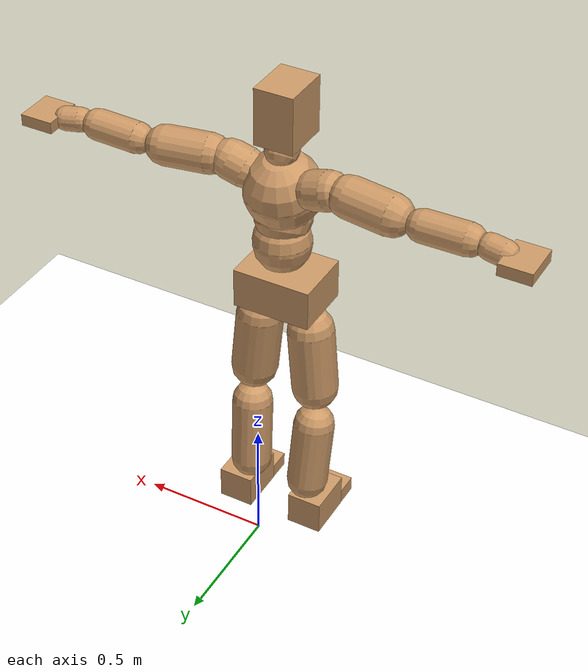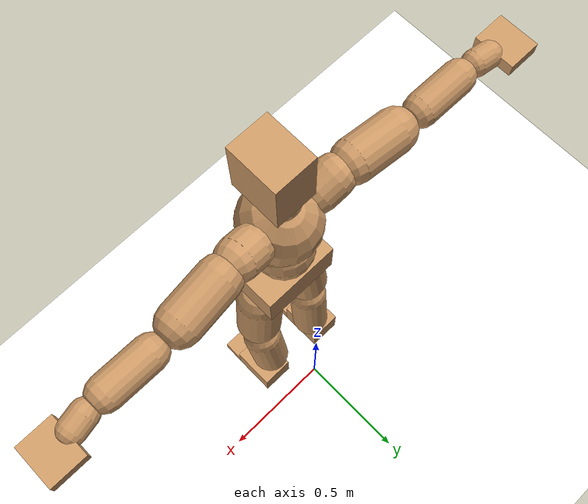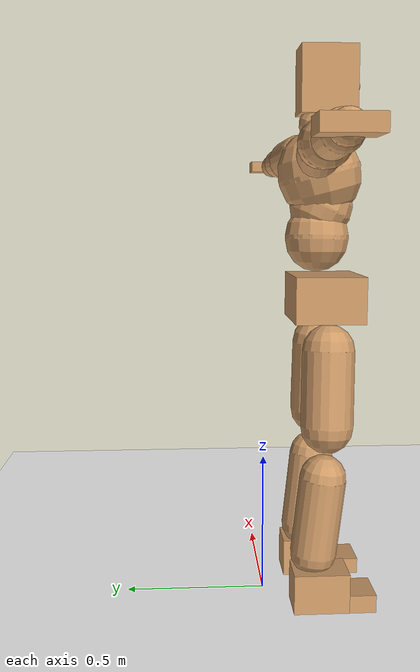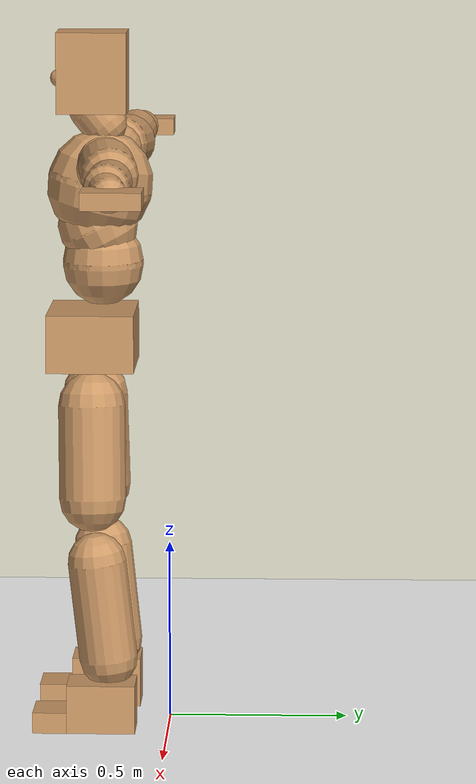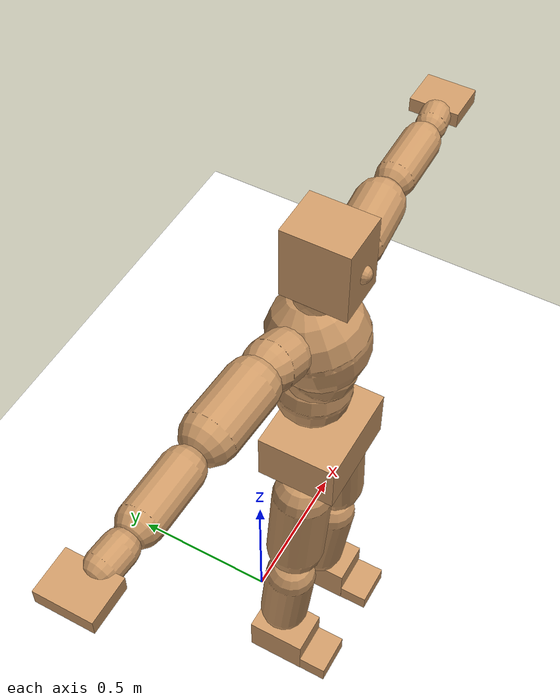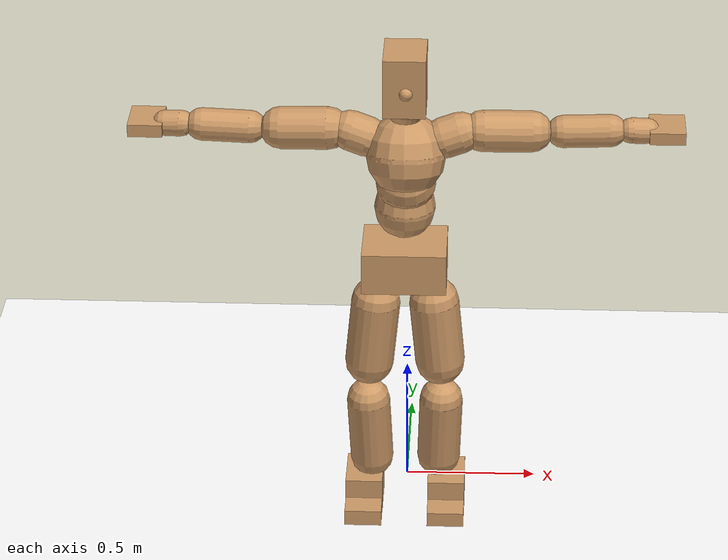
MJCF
<mujoco model="humanoid">
  <option integrator="implicitfast" />

  <visual>
    <global offwidth="1280" offheight="960" />
    <headlight active="1" ambient="0.34 0.34 0.34" diffuse="0.5 0.5 0.5" />
  </visual>

  <default>
    <joint damping="2" stiffness="2" armature="0.01" limited="true" solimplimit="0 .99 .01" />
    <geom condim="1" friction="0.7 0.005 0.0001" solimp=".99 .99 .003" solref="0.015 1" margin="0.001" rgba="0.8 0.6 .4 1" />
    <default class="smplcontact">
      <geom condim="3" friction="1. 0.005 0.0001" solref="0.015 1" solimp="0.98 0.98 0.001" priority="1" />
    </default>
    <default class="stiff_medium">
      <joint stiffness="10" />
    </default>
    <default class="stiff_medium_higher">
      <joint stiffness="50" />
    </default>
    <default class="stiff_high">
      <joint stiffness="100" />
    </default>
  </default>

  <asset>
    <texture type="skybox" builtin="gradient" rgb1="0.99 0.99 0.99" rgb2="0.608 0.828 0.892" width="100" />
    <texture builtin="flat" height="1278" mark="cross" markrgb="1 1 1" name="texgeom" random="0.01" rgb1="0.8 0.6 0.4" rgb2="0.8 0.6 0.4" type="cube" width="127" />
    <texture name="texplane" type="2d" builtin="checker" markrgb="1 1 1" rgb1="0.756 0.772 0.76" rgb2="0.6 0.6 0.6" width="100" height="100" />
    <material name="MatPlane" reflectance="0.5" texture="texplane" texrepeat="1 1" texuniform="true" />
    <material name="geom" texture="texgeom" texuniform="true" />
  </asset>

  <worldbody>
    <light name="tracking_light" pos="0 0 7" dir="0 0 -1" directional="true" cutoff="100" exponent="1" diffuse="1 1 1" specular="0.1 0.1 0.1" mode="trackcom" />
    <camera name="back" pos="0 3 2.4" xyaxes="-1 0 0 0 -1 2" mode="trackcom" />
    <camera name="side" pos="-3 0 2.4" xyaxes="0 -1 0 1 0 2" mode="trackcom" />
    <camera name="front_side" pos="-2.8 -2.8 0.8" xyaxes="0.5 -0.5 0 0.1 0.1 1" mode="trackcom" />
    <geom condim="3" name="floor" pos="0 0 0" rgba="1 1 1 1" size="100 100 .2" type="plane" material="MatPlane" />
    <body name="Pelvis" pos="-0.0018 -0.2233 1.10043" euler="90 0 0">
      <site name="Pelvis" size="0.01" />
      <freejoint name="Pelvis" />
      <geom type="box" pos="0 -0.0135317 -0.0080542" size="0.156544 0.0807427 0.121545" quat="1.0000 0.0000 0.0000 0.0000" density="3165.830099" name="Pelvis" />
      <body name="L_Hip" pos="0.101776 -0.102214 -0.00995792">
        <joint name="L_Hip_x" type="hinge" pos="0 0 0" axis="1 0 0" stiffness="10" range="-160.0 22.92" class="stiff_medium" damping="15" />
        <joint name="L_Hip_y" type="hinge" pos="0 0 0" axis="0 1 0" stiffness="10" range="-70.0 70.0" class="stiff_medium" damping="10" />
        <joint name="L_Hip_z" type="hinge" pos="0 0 0" axis="0 0 1" stiffness="10" range="-28.65 90.0" class="stiff_medium" damping="10" />
        <geom type="capsule" density="2040.816327" fromto="0.00801034 -0.0867858 -0.00104172 0.0317324 -0.347382 -0.00416609" size="0.093191" name="L_Hip" />
        <body name="L_Knee" pos="0.0397428 -0.434167 -0.0052078">
          <joint name="L_Knee_x" type="hinge" pos="0 0 0" axis="1 0 0" range="-5.16 171.89" damping="8" />
          <joint name="L_Knee_y" type="hinge" pos="0 0 0" axis="0 1 0" range="-4.58 6.88" damping="8" />
          <joint name="L_Knee_z" type="hinge" pos="0 0 0" axis="0 0 1" range="-6.88 4.58" damping="8" />
          <geom type="capsule" density="1234.567901" fromto="-0.00311254 -0.0921141 -0.0100439 -0.0126014 -0.368447 -0.0404776" size="0.0819777" name="L_Knee" />
          <body name="L_Ankle" pos="-0.0157139 -0.460562 -0.0505215">
            <joint name="L_Ankle_x" type="hinge" pos="0 0 0" axis="1 0 0" range="-45.84 45.84" class="stiff_medium" damping="6" />
            <joint name="L_Ankle_y" type="hinge" pos="0 0 0" axis="0 1 0" range="-74.48 22.92" class="stiff_medium" damping="3" />
            <joint name="L_Ankle_z" type="hinge" pos="0 0 0" axis="0 0 1" range="-4.58 4.58" class="stiff_medium" damping="6" />
            <geom type="box" pos="0.0341205 -0.0349992 0.0271994" size="0.0707305 0.0679482 0.095535" quat="1.0000 0.0000 0.0000 0.0000" density="449.071558" name="L_Ankle" class="smplcontact" />
            <body name="L_Toe" pos="0.0386602 -0.0817135 0.134086">
              <joint name="L_Toe_x" type="hinge" pos="0 0 0" axis="1 0 0" range="-91.67 22.92" />
              <joint name="L_Toe_y" type="hinge" pos="0 0 0" axis="0 1 0" range="-4.58 4.58" />
              <joint name="L_Toe_z" type="hinge" pos="0 0 0" axis="0 0 1" range="-4.58 4.58" />
              <geom type="box" pos="-0.0043932 0.0080542 0.0278737" size="0.0699983 0.029288 0.0557475" quat="1.0000 0.0000 0.0000 0.0000" density="423.206892" name="L_Toe" class="smplcontact" />
            </body>
          </body>
        </body>
      </body>
      <body name="R_Hip" pos="-0.0991399 -0.101208 -0.00629692">
        <joint name="R_Hip_x" type="hinge" pos="0 0 0" axis="1 0 0" stiffness="10" range="-160.0 22.92" class="stiff_medium" damping="15" />
        <joint name="R_Hip_y" type="hinge" pos="0 0 0" axis="0 1 0" stiffness="10" range="-70.0 70.0" class="stiff_medium" damping="10" />
        <joint name="R_Hip_z" type="hinge" pos="0 0 0" axis="0 0 1" stiffness="10" range="-90.0 28.65" class="stiff_medium" damping="10" />
        <geom type="capsule" density="2040.816327" fromto="-0.00893504 -0.0885211 -0.00209506 -0.0354343 -0.354208 -0.00822809" size="0.0918272" name="R_Hip" />
        <body name="R_Knee" pos="-0.0443694 -0.44273 -0.0103232">
          <joint name="R_Knee_x" type="hinge" pos="0 0 0" axis="1 0 0" range="-5.16 171.89" damping="8" />
          <joint name="R_Knee_y" type="hinge" pos="0 0 0" axis="0 1 0" range="-6.88 4.58" damping="8" />
          <joint name="R_Knee_z" type="hinge" pos="0 0 0" axis="0 0 1" range="-4.58 6.88" damping="8" />
          <geom type="capsule" density="1234.567901" fromto="0.00372624 -0.0922236 -0.00985825 0.0146037 -0.368788 -0.0391348" size="0.0819777" name="R_Knee" />
          <body name="R_Ankle" pos="0.0183299 -0.461012 -0.048993">
            <joint name="R_Ankle_x" type="hinge" pos="0 0 0" axis="1 0 0" range="-45.84 45.84" class="stiff_medium" damping="6" />
            <joint name="R_Ankle_y" type="hinge" pos="0 0 0" axis="0 1 0" range="-22.92 74.48" class="stiff_medium" damping="3" />
            <joint name="R_Ankle_z" type="hinge" pos="0 0 0" axis="0 0 1" range="-4.58 4.58" class="stiff_medium" damping="6" />
            <geom type="box" pos="-0.0310453 -0.0254806 0.0287729" size="0.0707305 0.0699983 0.0972209" quat="1.0000 0.0000 0.0000 0.0000" density="434.700981" name="R_Ankle" class="smplcontact" />
            <body name="R_Toe" pos="-0.0371958 -0.0704376 0.138582">
              <joint name="R_Toe_x" type="hinge" pos="0 0 0" axis="1 0 0" range="-91.67 22.92" />
              <joint name="R_Toe_y" type="hinge" pos="0 0 0" axis="0 1 0" range="-4.58 4.58" />
              <joint name="R_Toe_z" type="hinge" pos="0 0 0" axis="0 0 1" range="-4.58 4.58" />
              <geom type="box" pos="0.00615048 0.0065898 0.0255135" size="0.0701448 0.031631 0.0554103" quat="1.0000 0.0000 0.0000 0.0000" density="407.384095" name="R_Toe" class="smplcontact" />
            </body>
          </body>
        </body>
      </body>
      <body name="Torso" pos="-0.003661 0.121897 -0.0390995">
        <joint name="Torso_x" type="hinge" pos="0 0 0" axis="1 0 0" range="-25.78 57.3" class="stiff_medium" damping="15" />
        <joint name="Torso_y" type="hinge" pos="0 0 0" axis="0 1 0" range="-57.3 57.3" class="stiff_high" damping="20" />
        <joint name="Torso_z" type="hinge" pos="0 0 0" axis="0 0 1" range="-34.38 34.38" class="stiff_high" damping="20" />
        <geom type="capsule" density="2040.816327" fromto="0.0028742 0.0678167 0.00057484 0.00343193 0.0828754 0.000686386" size="0.112328" name="Torso" />
        <body name="Spine" pos="0.00630485 0.150804 0.00126097">
          <joint name="Spine_x" type="hinge" pos="0 0 0" axis="1 0 0" stiffness="10" range="-25.78 57.3" class="stiff_medium" damping="15" />
          <joint name="Spine_y" type="hinge" pos="0 0 0" axis="0 1 0" stiffness="10" range="-57.3 57.3" class="stiff_high" damping="8" />
          <joint name="Spine_z" type="hinge" pos="0 0 0" axis="0 0 1" stiffness="20" range="-34.38 34.38" class="stiff_high" damping="12" />
          <geom type="capsule" density="2040.816327" fromto="0.000868142 0.0265842 0.0126389 0.000979688 0.0324962 0.0155391" size="0.110283" name="Spine" />
          <body name="Chest" pos="0.00184783 0.0590804 0.0281781">
            <joint name="Chest_x" type="hinge" pos="0 0 0" axis="1 0 0" stiffness="10" range="-25.78 57.3" class="stiff_medium" damping="15" />
            <joint name="Chest_y" type="hinge" pos="0 0 0" axis="0 1 0" stiffness="10" range="-57.3 57.3" class="stiff_high" damping="8" />
            <joint name="Chest_z" type="hinge" pos="0 0 0" axis="0 0 1" stiffness="20" range="-34.38 34.38" class="stiff_high" damping="12" />
            <geom type="capsule" density="2040.816327" fromto="-0.00115887 0.0760997 -0.0191954 -0.00127041 0.0929431 -0.0235457" size="0.146362" name="Chest" />
            <body name="Neck" pos="-0.00360772 0.239626 -0.0438568">
              <joint name="Neck_x" type="hinge" pos="0 0 0" axis="1 0 0" range="-28.65 57.3" class="stiff_medium_higher" damping="10" />
              <joint name="Neck_y" type="hinge" pos="0 0 0" axis="0 1 0" range="-40.11 40.11" class="stiff_medium_higher" damping="10" />
              <joint name="Neck_z" type="hinge" pos="0 0 0" axis="0 0 1" range="-40.11 40.11" class="stiff_medium_higher" damping="10" />
              <geom type="capsule" density="1000" fromto="0.00111195 0.0146062 0.0115842 0.00459616 0.0584399 0.0462016" size="0.0641661" name="Neck" />
              <body name="Head" pos="0.00585649 0.0730612 0.0576506">
                <joint name="Head_x" type="hinge" pos="0 0 0" axis="1 0 0" range="-28.65 57.3" class="stiff_medium_higher" damping="2" />
                <joint name="Head_y" type="hinge" pos="0 0 0" axis="0 1 0" range="-40.11 40.11" class="stiff_medium_higher" damping="2" />
                <joint name="Head_z" type="hinge" pos="0 0 0" axis="0 0 1" range="-40.11 40.11" class="stiff_medium_higher" damping="2" />
                <geom type="box" pos="-0.00536802 0.0854989 -0.014826" size="0.0774529 0.112632 0.0971356" quat="1.0000 0.0000 0.0000 0.0000" density="1018.069894" name="Head" />
                <geom type="capsule" name="nose" size="0.025562 0.012781" pos="0 0.0683211 0.063905" quat="1 0 0 0" mass="0" contype="0" conaffinity="0" />
              </body>
            </body>
            <body name="L_Thorax" pos="0.115382 0.135699 -0.0389446">
              <joint name="L_Thorax_x" type="hinge" pos="0 0 0" axis="1 0 0" range="-10.89 4.58" class="stiff_medium_higher" damping="20" />
              <joint name="L_Thorax_y" type="hinge" pos="0 0 0" axis="0 1 0" range="-28.65 17.19" class="stiff_medium_higher" damping="20" />
              <joint name="L_Thorax_z" type="hinge" pos="0 0 0" axis="0 0 1" range="-31.51 40.11" class="stiff_medium_higher" damping="20" />
              <geom type="capsule" density="1000" fromto="0.0204045 0.00683886 -0.00202959 0.0816209 0.0273564 -0.00797184" size="0.076488" name="L_Thorax" />
              <body name="L_Shoulder" pos="0.102025 0.0341953 -0.0100014">
                <joint name="L_Shoulder_x" type="hinge" pos="0 0 0" axis="1 0 0" range="-97.4 97.4" class="stiff_medium" damping="6" />
                <joint name="L_Shoulder_y" type="hinge" pos="0 0 0" axis="0 1 0" range="-108.86 80.21" class="stiff_medium" damping="6" />
                <joint name="L_Shoulder_z" type="hinge" pos="0 0 0" axis="0 0 1" range="-97.4 85.94" class="stiff_medium" damping="6" />
                <geom type="capsule" density="1000" fromto="0.0591502 -0.0029873 -0.00626957 0.236718 -0.0116492 -0.0250749" size="0.0771623" name="L_Shoulder" />
                <body name="L_Elbow" pos="0.295869 -0.0146365 -0.0313445">
                  <joint name="L_Elbow_x" type="hinge" pos="0 0 0" axis="1 0 0" range="-17.19 4.58" damping="5" />
                  <joint name="L_Elbow_y" type="hinge" pos="0 0 0" axis="0 1 0" range="-180.0 17.19" damping="5" />
                  <joint name="L_Elbow_z" type="hinge" pos="0 0 0" axis="0 0 1" range="-100.84 4.58" damping="5" />
                  <geom type="capsule" density="1000" fromto="0.0567581 0.00205235 -0.000216295 0.22726 0.00820683 -0.0010141" size="0.0604462" name="L_Elbow" />
                  <body name="L_Wrist" pos="0.284018 0.0102592 -0.00137964">
                    <joint name="L_Wrist_x" type="hinge" pos="0 0 0" axis="1 0 0" range="-180.0 22.92" />
                    <joint name="L_Wrist_y" type="hinge" pos="0 0 0" axis="0 1 0" range="-17.19 17.19" />
                    <joint name="L_Wrist_z" type="hinge" pos="0 0 0" axis="0 0 1" range="-22.92 22.92" />
                    <geom type="capsule" density="1000" fromto="0.0191484 -0.0018119 -0.00341936 0.0765903 -0.00739653 -0.0136768" size="0.0474615" name="L_Wrist" class="smplcontact" />
                    <body name="L_Hand" pos="0.0957414 -0.00935794 -0.0169474">
                      <joint name="L_Hand_x" type="hinge" pos="0 0 0" axis="1 0 0" range="-17.19 17.19" />
                      <joint name="L_Hand_y" type="hinge" pos="0 0 0" axis="0 1 0" range="-51.57 51.57" />
                      <joint name="L_Hand_z" type="hinge" pos="0 0 0" axis="0 0 1" range="-91.67 91.67" />
                      <geom type="box" pos="0.0551332 0.0014644 -0.00849352" size="0.0654217 0.0231375 0.0787847" quat="1.0000 0.0000 0.0000 0.0000" density="400.552564" name="L_Hand" class="smplcontact" />
                    </body>
                  </body>
                </body>
              </body>
            </body>
            <body name="R_Thorax" pos="-0.119208 0.131681 -0.0455741">
              <joint name="R_Thorax_x" type="hinge" pos="0 0 0" axis="1 0 0" range="-10.89 4.58" class="stiff_medium_higher" damping="20" />
              <joint name="R_Thorax_y" type="hinge" pos="0 0 0" axis="0 1 0" range="-17.19 28.65" class="stiff_medium_higher" damping="20" />
              <joint name="R_Thorax_z" type="hinge" pos="0 0 0" axis="0 0 1" range="-40.11 31.51" class="stiff_medium_higher" damping="20" />
              <geom type="capsule" density="1000" fromto="-0.0215276 0.007288 -0.00200665 -0.0861076 0.029151 -0.00817314" size="0.0750199" name="R_Thorax" />
              <body name="R_Shoulder" pos="-0.107625 0.0365823 -0.0101788">
                <joint name="R_Shoulder_x" type="hinge" pos="0 0 0" axis="1 0 0" range="-97.4 97.4" class="stiff_medium" damping="6" />
                <joint name="R_Shoulder_y" type="hinge" pos="0 0 0" axis="0 1 0" range="-80.21 108.86" class="stiff_medium" damping="6" />
                <joint name="R_Shoulder_z" type="hinge" pos="0 0 0" axis="0 0 1" range="-85.94 97.4" class="stiff_medium" damping="6" />
                <geom type="capsule" density="1000" fromto="-0.057782 -0.00309014 -0.00491438 -0.231361 -0.0122079 -0.0195028" size="0.0792517" name="R_Shoulder" />
                <body name="R_Elbow" pos="-0.289145 -0.0151489 -0.0244173">
                  <joint name="R_Elbow_x" type="hinge" pos="0 0 0" axis="1 0 0" range="-17.19 4.58" damping="5" />
                  <joint name="R_Elbow_y" type="hinge" pos="0 0 0" axis="0 1 0" range="-17.19 180.0" damping="5" />
                  <joint name="R_Elbow_z" type="hinge" pos="0 0 0" axis="0 0 1" range="-4.58 100.84" damping="5" />
                  <geom type="capsule" density="1000" fromto="-0.058239 0.00184634 -0.00125317 -0.23273 0.00708905 -0.00501425" size="0.060894" name="R_Elbow" />
                  <body name="R_Wrist" pos="-0.290968 0.00893537 -0.00641665">
                    <joint name="R_Wrist_x" type="hinge" pos="0 0 0" axis="1 0 0" range="-180.0 22.92" />
                    <joint name="R_Wrist_y" type="hinge" pos="0 0 0" axis="0 1 0" range="-17.19 17.19" />
                    <joint name="R_Wrist_z" type="hinge" pos="0 0 0" axis="0 0 1" range="-22.92 22.92" />
                    <geom type="capsule" density="1000" fromto="-0.0192605 -0.0013567 -0.00240651 -0.0771582 -0.00557367 -0.00947277" size="0.0486555" name="R_Wrist" class="smplcontact" />
                    <body name="R_Hand" pos="-0.0964229 -0.00693068 -0.0117305">
                      <joint name="R_Hand_x" type="hinge" pos="0 0 0" axis="1 0 0" range="-17.19 17.19" />
                      <joint name="R_Hand_y" type="hinge" pos="0 0 0" axis="0 1 0" range="-51.57 51.57" />
                      <joint name="R_Hand_z" type="hinge" pos="0 0 0" axis="0 0 1" range="-91.67 91.67" />
                      <geom type="box" pos="-0.0516664 -0.00131796 -0.0115688" size="0.0636324 0.0240162 0.0799562" quat="1.0000 0.0000 0.0000 0.0000" density="403.679611" name="R_Hand" class="smplcontact" />
                    </body>
                  </body>
                </body>
              </body>
            </body>
          </body>
        </body>
      </body>
    </body>
  </worldbody>
  <actuator>
    <general name="L_Hip_x" joint="L_Hip_x" biastype="affine" gainprm="287.33006409732246" biasprm="-215.3247604770444 -180 -2.0" ctrllimited="true" ctrlrange="-1 1" forcerange="-360 360" />
    <general name="L_Hip_y" joint="L_Hip_y" biastype="affine" gainprm="219.9114857512855" biasprm="0.0 -180 -2.0" ctrllimited="true" ctrlrange="-1 1" forcerange="-360 360" />
    <general name="L_Hip_z" joint="L_Hip_z" biastype="affine" gainprm="186.3749841742145" biasprm="96.3683546488669 -180 -2.0" ctrllimited="true" ctrlrange="-1 1" forcerange="-360 360" />
    <general name="L_Knee_x" joint="L_Knee_x" biastype="affine" gainprm="278.10948965903646" biasprm="261.8988715665131 -180 -2.0" ctrllimited="true" ctrlrange="-1 1" forcerange="-360 360" />
    <general name="L_Knee_y" joint="L_Knee_y" biastype="affine" gainprm="18.001325905069514" biasprm="3.612831551628262 -180 -2.0" ctrllimited="true" ctrlrange="-1 1" forcerange="-360 360" />
    <general name="L_Knee_z" joint="L_Knee_z" biastype="affine" gainprm="18.001325905069514" biasprm="-3.612831551628262 -180 -2.0" ctrllimited="true" ctrlrange="-1 1" forcerange="-360 360" />
    <general name="L_Ankle_x" joint="L_Ankle_x" biastype="affine" gainprm="72.00530362027807" biasprm="0.0 -90 -2.0" ctrllimited="true" ctrlrange="-1 1" forcerange="-180 180" />
    <general name="L_Ankle_y" joint="L_Ankle_y" biastype="affine" gainprm="76.49778111491148" biasprm="-40.49512930477244 -90 -2.0" ctrllimited="true" ctrlrange="-1 1" forcerange="-180 180" />
    <general name="L_Ankle_z" joint="L_Ankle_z" biastype="affine" gainprm="7.1942471767206255" biasprm="0.0 -90 -2.0" ctrllimited="true" ctrlrange="-1 1" forcerange="-180 180" />
    <general name="L_Toe_x" joint="L_Toe_x" biastype="affine" gainprm="71.99902043497087" biasprm="-43.19689898685965 -72 -0.8" ctrllimited="true" ctrlrange="-1 1" forcerange="-144 144" />
    <general name="L_Toe_y" joint="L_Toe_y" biastype="affine" gainprm="5.755397741376501" biasprm="0.0 -72 -0.8" ctrllimited="true" ctrlrange="-1 1" forcerange="-144 144" />
    <general name="L_Toe_z" joint="L_Toe_z" biastype="affine" gainprm="5.755397741376501" biasprm="0.0 -72 -0.8" ctrllimited="true" ctrlrange="-1 1" forcerange="-144 144" />
    <general name="R_Hip_x" joint="R_Hip_x" biastype="affine" gainprm="287.33006409732246" biasprm="-215.3247604770444 -180 -2.0" ctrllimited="true" ctrlrange="-1 1" forcerange="-360 360" />
    <general name="R_Hip_y" joint="R_Hip_y" biastype="affine" gainprm="219.9114857512855" biasprm="0.0 -180 -2.0" ctrllimited="true" ctrlrange="-1 1" forcerange="-360 360" />
    <general name="R_Hip_z" joint="R_Hip_z" biastype="affine" gainprm="186.3749841742145" biasprm="-96.3683546488669 -180 -2.0" ctrllimited="true" ctrlrange="-1 1" forcerange="-360 360" />
    <general name="R_Knee_x" joint="R_Knee_x" biastype="affine" gainprm="278.10948965903646" biasprm="261.8988715665131 -180 -2.0" ctrllimited="true" ctrlrange="-1 1" forcerange="-360 360" />
    <general name="R_Knee_y" joint="R_Knee_y" biastype="affine" gainprm="18.001325905069514" biasprm="-3.612831551628262 -180 -2.0" ctrllimited="true" ctrlrange="-1 1" forcerange="-360 360" />
    <general name="R_Knee_z" joint="R_Knee_z" biastype="affine" gainprm="18.001325905069514" biasprm="3.612831551628262 -180 -2.0" ctrllimited="true" ctrlrange="-1 1" forcerange="-360 360" />
    <general name="R_Ankle_x" joint="R_Ankle_x" biastype="affine" gainprm="72.00530362027807" biasprm="0.0 -90 -2.0" ctrllimited="true" ctrlrange="-1 1" forcerange="-180 180" />
    <general name="R_Ankle_y" joint="R_Ankle_y" biastype="affine" gainprm="76.49778111491148" biasprm="40.49512930477244 -90 -2.0" ctrllimited="true" ctrlrange="-1 1" forcerange="-180 180" />
    <general name="R_Ankle_z" joint="R_Ankle_z" biastype="affine" gainprm="7.1942471767206255" biasprm="0.0 -90 -2.0" ctrllimited="true" ctrlrange="-1 1" forcerange="-180 180" />
    <general name="R_Toe_x" joint="R_Toe_x" biastype="affine" gainprm="71.99902043497087" biasprm="-43.19689898685965 -72 -0.8" ctrllimited="true" ctrlrange="-1 1" forcerange="-144 144" />
    <general name="R_Toe_y" joint="R_Toe_y" biastype="affine" gainprm="5.755397741376501" biasprm="0.0 -72 -0.8" ctrllimited="true" ctrlrange="-1 1" forcerange="-144 144" />
    <general name="R_Toe_z" joint="R_Toe_z" biastype="affine" gainprm="5.755397741376501" biasprm="0.0 -72 -0.8" ctrllimited="true" ctrlrange="-1 1" forcerange="-144 144" />
    <general name="Torso_x" joint="Torso_x" biastype="affine" gainprm="174.00234510682668" biasprm="66.0153336274335 -240 -4.0" ctrllimited="true" ctrlrange="-1 1" forcerange="-360 360" />
    <general name="Torso_y" joint="Torso_y" biastype="affine" gainprm="240.0176787342602" biasprm="0.0 -240 -4.0" ctrllimited="true" ctrlrange="-1 1" forcerange="-360 360" />
    <general name="Torso_z" joint="Torso_z" biastype="affine" gainprm="144.01060724055614" biasprm="0.0 -240 -4.0" ctrllimited="true" ctrlrange="-1 1" forcerange="-360 360" />
    <general name="Spine_x" joint="Spine_x" biastype="affine" gainprm="174.00234510682668" biasprm="66.0153336274335 -240 -4.0" ctrllimited="true" ctrlrange="-1 1" forcerange="-360 360" />
    <general name="Spine_y" joint="Spine_y" biastype="affine" gainprm="240.0176787342602" biasprm="0.0 -240 -4.0" ctrllimited="true" ctrlrange="-1 1" forcerange="-360 360" />
    <general name="Spine_z" joint="Spine_z" biastype="affine" gainprm="144.01060724055614" biasprm="0.0 -240 -4.0" ctrllimited="true" ctrlrange="-1 1" forcerange="-360 360" />
    <general name="Chest_x" joint="Chest_x" biastype="affine" gainprm="174.00234510682668" biasprm="66.0153336274335 -240 -4.0" ctrllimited="true" ctrlrange="-1 1" forcerange="-360 360" />
    <general name="Chest_y" joint="Chest_y" biastype="affine" gainprm="240.0176787342602" biasprm="0.0 -240 -4.0" ctrllimited="true" ctrlrange="-1 1" forcerange="-360 360" />
    <general name="Chest_z" joint="Chest_z" biastype="affine" gainprm="144.01060724055614" biasprm="0.0 -240 -4.0" ctrllimited="true" ctrlrange="-1 1" forcerange="-360 360" />
    <general name="Neck_x" joint="Neck_x" biastype="affine" gainprm="27.00198885760427" biasprm="9.000662952534757 -36 -0.8" ctrllimited="true" ctrlrange="-1 1" forcerange="-72 72" />
    <general name="Neck_y" joint="Neck_y" biastype="affine" gainprm="25.20185626709732" biasprm="0.0 -36 -0.8" ctrllimited="true" ctrlrange="-1 1" forcerange="-72 72" />
    <general name="Neck_z" joint="Neck_z" biastype="affine" gainprm="25.20185626709732" biasprm="0.0 -36 -0.8" ctrllimited="true" ctrlrange="-1 1" forcerange="-72 72" />
    <general name="Head_x" joint="Head_x" biastype="affine" gainprm="18.001325905069514" biasprm="6.000441968356505 -24 -0.8" ctrllimited="true" ctrlrange="-1 1" forcerange="-48 48" />
    <general name="Head_y" joint="Head_y" biastype="affine" gainprm="16.801237511398213" biasprm="0.0 -24 -0.8" ctrllimited="true" ctrlrange="-1 1" forcerange="-48 48" />
    <general name="Head_z" joint="Head_z" biastype="affine" gainprm="16.801237511398213" biasprm="0.0 -24 -0.8" ctrllimited="true" ctrlrange="-1 1" forcerange="-48 48" />
    <general name="L_Thorax_x" joint="L_Thorax_x" biastype="affine" gainprm="16.200146117011364" biasprm="-6.6078165480505335 -120 -1.6" ctrllimited="true" ctrlrange="-1 1" forcerange="-240 240" />
    <general name="L_Thorax_y" joint="L_Thorax_y" biastype="affine" gainprm="48.00353574685204" biasprm="-12.00088393671301 -120 -1.6" ctrllimited="true" ctrlrange="-1 1" forcerange="-240 240" />
    <general name="L_Thorax_z" joint="L_Thorax_z" biastype="affine" gainprm="75.00028861670033" biasprm="9.00589894029074 -120 -1.6" ctrllimited="true" ctrlrange="-1 1" forcerange="-240 240" />
    <general name="L_Shoulder_x" joint="L_Shoulder_x" biastype="affine" gainprm="81.5976331892389" biasprm="0.0 -48 -1.6" ctrllimited="true" ctrlrange="-1 1" forcerange="-96 96" />
    <general name="L_Shoulder_y" joint="L_Shoulder_y" biastype="affine" gainprm="79.19745640189629" biasprm="-12.00088393671301 -48 -1.6" ctrllimited="true" ctrlrange="-1 1" forcerange="-96 96" />
    <general name="L_Shoulder_z" joint="L_Shoulder_z" biastype="affine" gainprm="76.79727961455369" biasprm="-4.800353574685214 -48 -1.6" ctrllimited="true" ctrlrange="-1 1" forcerange="-96 96" />
    <general name="L_Elbow_x" joint="L_Elbow_x" biastype="affine" gainprm="13.67849441372996" biasprm="-7.923096672353461 -72 -0.8" ctrllimited="true" ctrlrange="-1 1" forcerange="-144 144" />
    <general name="L_Elbow_y" joint="L_Elbow_y" biastype="affine" gainprm="123.89813107227425" biasprm="-102.29653998619085 -72 -0.8" ctrllimited="true" ctrlrange="-1 1" forcerange="-144 144" />
    <general name="L_Elbow_z" joint="L_Elbow_z" biastype="affine" gainprm="66.23733950828719" biasprm="-60.4819417669107 -72 -0.8" ctrllimited="true" ctrlrange="-1 1" forcerange="-144 144" />
    <general name="L_Wrist_x" joint="L_Wrist_x" biastype="affine" gainprm="21.24973270888136" biasprm="-16.449379134196157 -12 -0.8" ctrllimited="true" ctrlrange="-1 1" forcerange="-24 24" />
    <general name="L_Wrist_y" joint="L_Wrist_y" biastype="affine" gainprm="3.6002651810139037" biasprm="0.0 -12 -0.8" ctrllimited="true" ctrlrange="-1 1" forcerange="-24 24" />
    <general name="L_Wrist_z" joint="L_Wrist_z" biastype="affine" gainprm="4.800353574685205" biasprm="0.0 -12 -0.8" ctrllimited="true" ctrlrange="-1 1" forcerange="-24 24" />
    <general name="L_Hand_x" joint="L_Hand_x" biastype="affine" gainprm="3.6002651810139037" biasprm="0.0 -12 -0.8" ctrllimited="true" ctrlrange="-1 1" forcerange="-24 24" />
    <general name="L_Hand_y" joint="L_Hand_y" biastype="affine" gainprm="10.800795543041708" biasprm="0.0 -12 -0.8" ctrllimited="true" ctrlrange="-1 1" forcerange="-24 24" />
    <general name="L_Hand_z" joint="L_Hand_z" biastype="affine" gainprm="19.199319903638422" biasprm="0.0 -12 -0.8" ctrllimited="true" ctrlrange="-1 1" forcerange="-24 24" />
    <general name="R_Thorax_x" joint="R_Thorax_x" biastype="affine" gainprm="16.200146117011364" biasprm="-6.6078165480505335 -120 -1.6" ctrllimited="true" ctrlrange="-1 1" forcerange="-240 240" />
    <general name="R_Thorax_y" joint="R_Thorax_y" biastype="affine" gainprm="48.00353574685204" biasprm="12.000883936713002 -120 -1.6" ctrllimited="true" ctrlrange="-1 1" forcerange="-240 240" />
    <general name="R_Thorax_z" joint="R_Thorax_z" biastype="affine" gainprm="75.00028861670033" biasprm="-9.00589894029074 -120 -1.6" ctrllimited="true" ctrlrange="-1 1" forcerange="-240 240" />
    <general name="R_Shoulder_x" joint="R_Shoulder_x" biastype="affine" gainprm="81.5976331892389" biasprm="0.0 -48 -1.6" ctrllimited="true" ctrlrange="-1 1" forcerange="-96 96" />
    <general name="R_Shoulder_y" joint="R_Shoulder_y" biastype="affine" gainprm="79.19745640189629" biasprm="12.00088393671301 -48 -1.6" ctrllimited="true" ctrlrange="-1 1" forcerange="-96 96" />
    <general name="R_Shoulder_z" joint="R_Shoulder_z" biastype="affine" gainprm="76.79727961455369" biasprm="4.800353574685204 -48 -1.6" ctrllimited="true" ctrlrange="-1 1" forcerange="-96 96" />
    <general name="R_Elbow_x" joint="R_Elbow_x" biastype="affine" gainprm="13.67849441372996" biasprm="-7.923096672353461 -72 -0.8" ctrllimited="true" ctrlrange="-1 1" forcerange="-144 144" />
    <general name="R_Elbow_y" joint="R_Elbow_y" biastype="affine" gainprm="123.89813107227425" biasprm="102.29653998619085 -72 -0.8" ctrllimited="true" ctrlrange="-1 1" forcerange="-144 144" />
    <general name="R_Elbow_z" joint="R_Elbow_z" biastype="affine" gainprm="66.23733950828719" biasprm="60.481941766910694 -72 -0.8" ctrllimited="true" ctrlrange="-1 1" forcerange="-144 144" />
    <general name="R_Wrist_x" joint="R_Wrist_x" biastype="affine" gainprm="21.24973270888136" biasprm="-16.449379134196157 -12 -0.8" ctrllimited="true" ctrlrange="-1 1" forcerange="-24 24" />
    <general name="R_Wrist_y" joint="R_Wrist_y" biastype="affine" gainprm="3.6002651810139037" biasprm="0.0 -12 -0.8" ctrllimited="true" ctrlrange="-1 1" forcerange="-24 24" />
    <general name="R_Wrist_z" joint="R_Wrist_z" biastype="affine" gainprm="4.800353574685205" biasprm="0.0 -12 -0.8" ctrllimited="true" ctrlrange="-1 1" forcerange="-24 24" />
    <general name="R_Hand_x" joint="R_Hand_x" biastype="affine" gainprm="3.6002651810139037" biasprm="0.0 -12 -0.8" ctrllimited="true" ctrlrange="-1 1" forcerange="-24 24" />
    <general name="R_Hand_y" joint="R_Hand_y" biastype="affine" gainprm="10.800795543041708" biasprm="0.0 -12 -0.8" ctrllimited="true" ctrlrange="-1 1" forcerange="-24 24" />
    <general name="R_Hand_z" joint="R_Hand_z" biastype="affine" gainprm="19.199319903638422" biasprm="0.0 -12 -0.8" ctrllimited="true" ctrlrange="-1 1" forcerange="-24 24" />
  </actuator>
  <contact>
    <exclude body1="Torso" body2="Chest" />
    <exclude body1="Head" body2="Chest" />
    <exclude body1="R_Knee" body2="R_Toe" />
    <exclude body1="R_Knee" body2="L_Ankle" />
    <exclude body1="R_Knee" body2="L_Toe" />
    <exclude body1="L_Knee" body2="L_Toe" />
    <exclude body1="L_Knee" body2="R_Ankle" />
    <exclude body1="L_Knee" body2="R_Toe" />
    <exclude body1="L_Shoulder" body2="Chest" />
    <exclude body1="R_Shoulder" body2="Chest" />
  </contact>
  <sensor>
    <framelinvel name="sensor_Pelvis_framelinvel" objtype="xbody" objname="Pelvis" />
    <framelinvel name="sensor_L_Hip_framelinvel" objtype="xbody" objname="L_Hip" />
    <framelinvel name="sensor_L_Knee_framelinvel" objtype="xbody" objname="L_Knee" />
    <framelinvel name="sensor_L_Ankle_framelinvel" objtype="xbody" objname="L_Ankle" />
    <framelinvel name="sensor_L_Toe_framelinvel" objtype="xbody" objname="L_Toe" />
    <framelinvel name="sensor_R_Hip_framelinvel" objtype="xbody" objname="R_Hip" />
    <framelinvel name="sensor_R_Knee_framelinvel" objtype="xbody" objname="R_Knee" />
    <framelinvel name="sensor_R_Ankle_framelinvel" objtype="xbody" objname="R_Ankle" />
    <framelinvel name="sensor_R_Toe_framelinvel" objtype="xbody" objname="R_Toe" />
    <framelinvel name="sensor_Torso_framelinvel" objtype="xbody" objname="Torso" />
    <framelinvel name="sensor_Spine_framelinvel" objtype="xbody" objname="Spine" />
    <framelinvel name="sensor_Chest_framelinvel" objtype="xbody" objname="Chest" />
    <framelinvel name="sensor_Neck_framelinvel" objtype="xbody" objname="Neck" />
    <framelinvel name="sensor_Head_framelinvel" objtype="xbody" objname="Head" />
    <framelinvel name="sensor_L_Thorax_framelinvel" objtype="xbody" objname="L_Thorax" />
    <framelinvel name="sensor_L_Shoulder_framelinvel" objtype="xbody" objname="L_Shoulder" />
    <framelinvel name="sensor_L_Elbow_framelinvel" objtype="xbody" objname="L_Elbow" />
    <framelinvel name="sensor_L_Wrist_framelinvel" objtype="xbody" objname="L_Wrist" />
    <framelinvel name="sensor_L_Hand_framelinvel" objtype="xbody" objname="L_Hand" />
    <framelinvel name="sensor_R_Thorax_framelinvel" objtype="xbody" objname="R_Thorax" />
    <framelinvel name="sensor_R_Shoulder_framelinvel" objtype="xbody" objname="R_Shoulder" />
    <framelinvel name="sensor_R_Elbow_framelinvel" objtype="xbody" objname="R_Elbow" />
    <framelinvel name="sensor_R_Wrist_framelinvel" objtype="xbody" objname="R_Wrist" />
    <framelinvel name="sensor_R_Hand_framelinvel" objtype="xbody" objname="R_Hand" />
    <frameangvel name="sensor_Pelvis_frameangvel" objtype="xbody" objname="Pelvis" />
    <frameangvel name="sensor_L_Hip_frameangvel" objtype="xbody" objname="L_Hip" />
    <frameangvel name="sensor_L_Knee_frameangvel" objtype="xbody" objname="L_Knee" />
    <frameangvel name="sensor_L_Ankle_frameangvel" objtype="xbody" objname="L_Ankle" />
    <frameangvel name="sensor_L_Toe_frameangvel" objtype="xbody" objname="L_Toe" />
    <frameangvel name="sensor_R_Hip_frameangvel" objtype="xbody" objname="R_Hip" />
    <frameangvel name="sensor_R_Knee_frameangvel" objtype="xbody" objname="R_Knee" />
    <frameangvel name="sensor_R_Ankle_frameangvel" objtype="xbody" objname="R_Ankle" />
    <frameangvel name="sensor_R_Toe_frameangvel" objtype="xbody" objname="R_Toe" />
    <frameangvel name="sensor_Torso_frameangvel" objtype="xbody" objname="Torso" />
    <frameangvel name="sensor_Spine_frameangvel" objtype="xbody" objname="Spine" />
    <frameangvel name="sensor_Chest_frameangvel" objtype="xbody" objname="Chest" />
    <frameangvel name="sensor_Neck_frameangvel" objtype="xbody" objname="Neck" />
    <frameangvel name="sensor_Head_frameangvel" objtype="xbody" objname="Head" />
    <frameangvel name="sensor_L_Thorax_frameangvel" objtype="xbody" objname="L_Thorax" />
    <frameangvel name="sensor_L_Shoulder_frameangvel" objtype="xbody" objname="L_Shoulder" />
    <frameangvel name="sensor_L_Elbow_frameangvel" objtype="xbody" objname="L_Elbow" />
    <frameangvel name="sensor_L_Wrist_frameangvel" objtype="xbody" objname="L_Wrist" />
    <frameangvel name="sensor_L_Hand_frameangvel" objtype="xbody" objname="L_Hand" />
    <frameangvel name="sensor_R_Thorax_frameangvel" objtype="xbody" objname="R_Thorax" />
    <frameangvel name="sensor_R_Shoulder_frameangvel" objtype="xbody" objname="R_Shoulder" />
    <frameangvel name="sensor_R_Elbow_frameangvel" objtype="xbody" objname="R_Elbow" />
    <frameangvel name="sensor_R_Wrist_frameangvel" objtype="xbody" objname="R_Wrist" />
    <frameangvel name="sensor_R_Hand_frameangvel" objtype="xbody" objname="R_Hand" />
    <subtreelinvel name="Chest_subtreelinvel" body="Chest" />
    <gyro name="Pelvis_gyro" site="Pelvis" />
  </sensor>
</mujoco>
